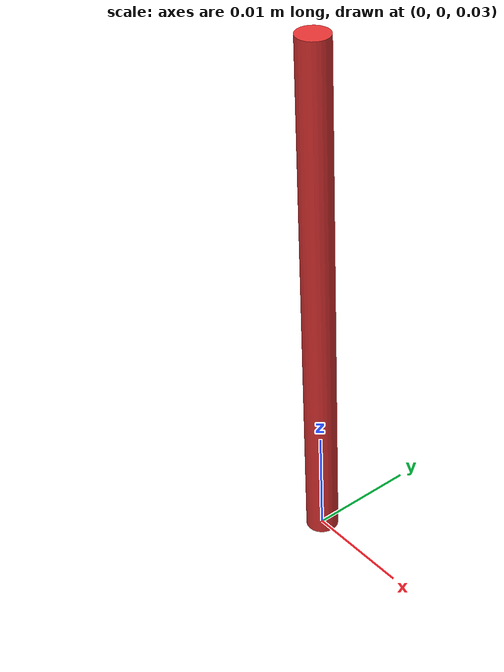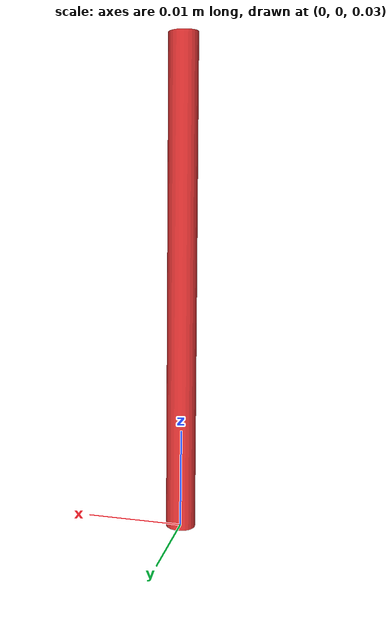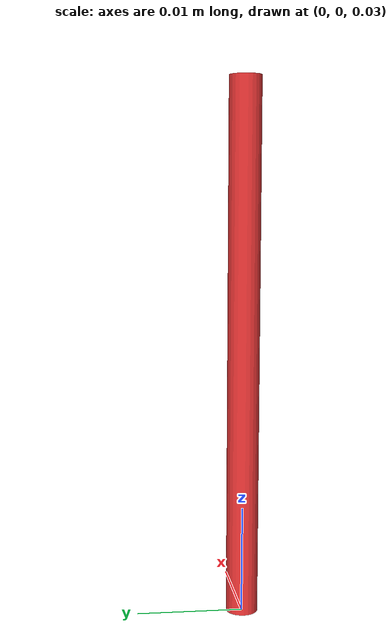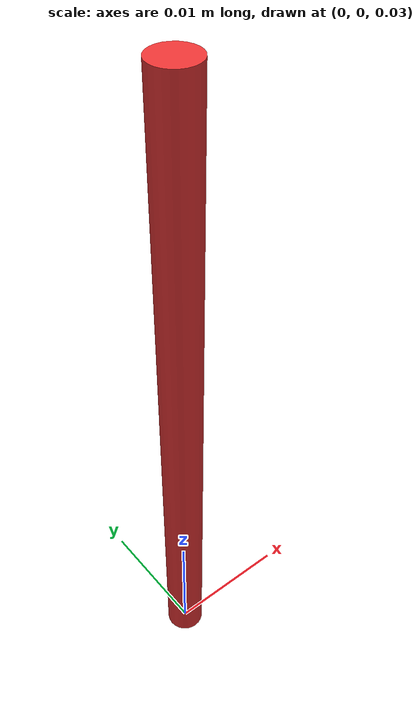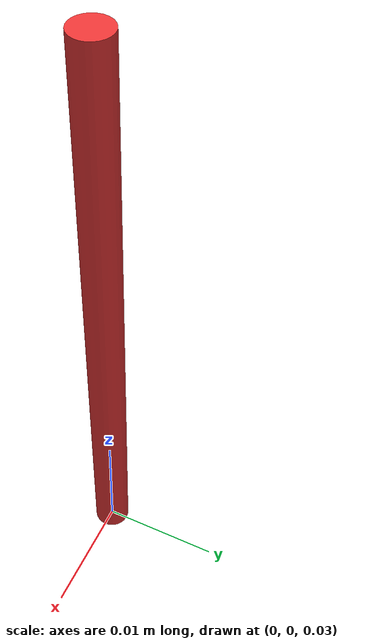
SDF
<?xml version="1.6"?>
<sdf version="1.6">
  <model name="needle_1">
    <static>false</static>
    <pose>0 0 0.03 0 0 0</pose>
    <link name="needle_link">
      <inertial>
        <mass>0.005</mass>
        <inertia>
          <ixx>1e-6</ixx><iyy>1e-6</iyy><izz>1e-6</izz>
          <ixy>0</ixy><ixz>0</ixz><iyz>0</iyz>
        </inertia>
      </inertial>
      <visual name="needle_visual">
        <geometry><cylinder><radius>0.0015</radius><length>0.05</length></cylinder></geometry>
        <material><ambient>0.9 0.2 0.2 1</ambient></material>
        <pose>0 0 0.025 0 0 0</pose>
      </visual>
      <collision name="needle_collision">
        <geometry><cylinder><radius>0.0015</radius><length>0.05</length></cylinder></geometry>
        <pose>0 0 0.025 0 0 0</pose>
      </collision>
    </link>
  </model>
</sdf>
